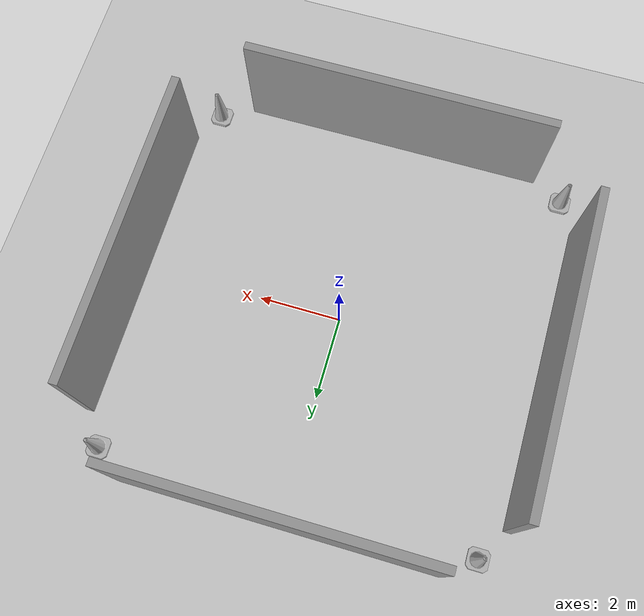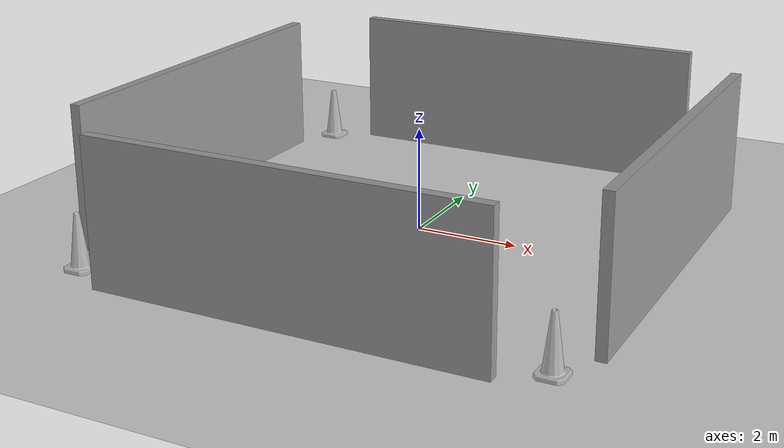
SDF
<?xml version="1.0"?>
<sdf version="1.6">
  <world name="simple_world">
    <include>
      <uri>model://ground_plane</uri>
    </include>
    <include>
      <uri>model://sun</uri>
    </include>

    <!-- Walls with Reduced Height -->
    <include>
      <uri>model://grey_wall</uri>
      <pose>0 5 0 0 0 0</pose>
      <name>grey_wall_1</name>
      <scale>1 1 0.5</scale>
    </include>
    <include>
      <uri>model://grey_wall</uri>
      <pose>0 -5 0 0 0 0</pose>
      <name>grey_wall_2</name>
      <scale>1 1 0.5</scale>
    </include>
    <include>
      <uri>model://grey_wall</uri>
      <pose>5 0 0 0 0 1.57</pose>
      <name>grey_wall_3</name>
      <scale>1 1 0.5</scale>
    </include>
    <include>
      <uri>model://grey_wall</uri>
      <pose>-5 0 0 0 0 1.57</pose>
      <name>grey_wall_4</name>
      <scale>1 1 0.5</scale>
    </include>

    <!-- Cones -->
    <include>
      <uri>model://construction_cone</uri>
      <pose>4.5 4.5 0 0 0 0</pose>
      <name>construction_cone_1</name>
    </include>
    <include>
      <uri>model://construction_cone</uri>
      <pose>-4.5 4.5 0 0 0 0</pose>
      <name>construction_cone_2</name>
    </include>
    <include>
      <uri>model://construction_cone</uri>
      <pose>4.5 -4.5 0 0 0 0</pose>
      <name>construction_cone_3</name>
    </include>
    <include>
      <uri>model://construction_cone</uri>
      <pose>-4.5 -4.5 0 0 0 0</pose>
      <name>construction_cone_4</name>
    </include>
  </world>
</sdf>

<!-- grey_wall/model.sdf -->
<sdf version="1.5">
  <model name="grey_wall">
    <static>true</static>
    <link name="link">
      <pose>0 0 1.4 0 0 0</pose>
      <collision name="collision">
        <geometry>
          <box>
            <size>7.5 0.2 2.8</size>
          </box>
        </geometry>
      </collision>
      <visual name="visual">
        <cast_shadows>false</cast_shadows>
        <geometry>
          <box>
            <size>7.5 0.2 2.8</size>
          </box>
        </geometry>
        <material>
          <script>
            <uri>model://../model_source/models/grey_wall/materials/scripts</uri>
            <uri>model://../model_source/models/grey_wall/materials/textures</uri>
            <name>vrc/grey_wall</name>
          </script>
        </material>
      </visual>
    </link>
  </model>
</sdf>

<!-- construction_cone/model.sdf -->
<sdf version="1.5">
  <model name="Construction Cone">
    <link name="link">
      <collision name="collision">
        <geometry>
          <mesh>
            <scale>10 10 10</scale>
            <uri>file://isr-testbed/construction_cone/meshes/construction_cone.dae</uri>
          </mesh>
        </geometry>
      </collision>
      <visual name="visual">
        <geometry>
          <mesh>
            <scale>10 10 10</scale>
            <uri>file://isr-testbed/construction_cone/meshes/construction_cone.dae</uri>
          </mesh>
        </geometry>
      </visual>
    </link>
  </model>
</sdf>
